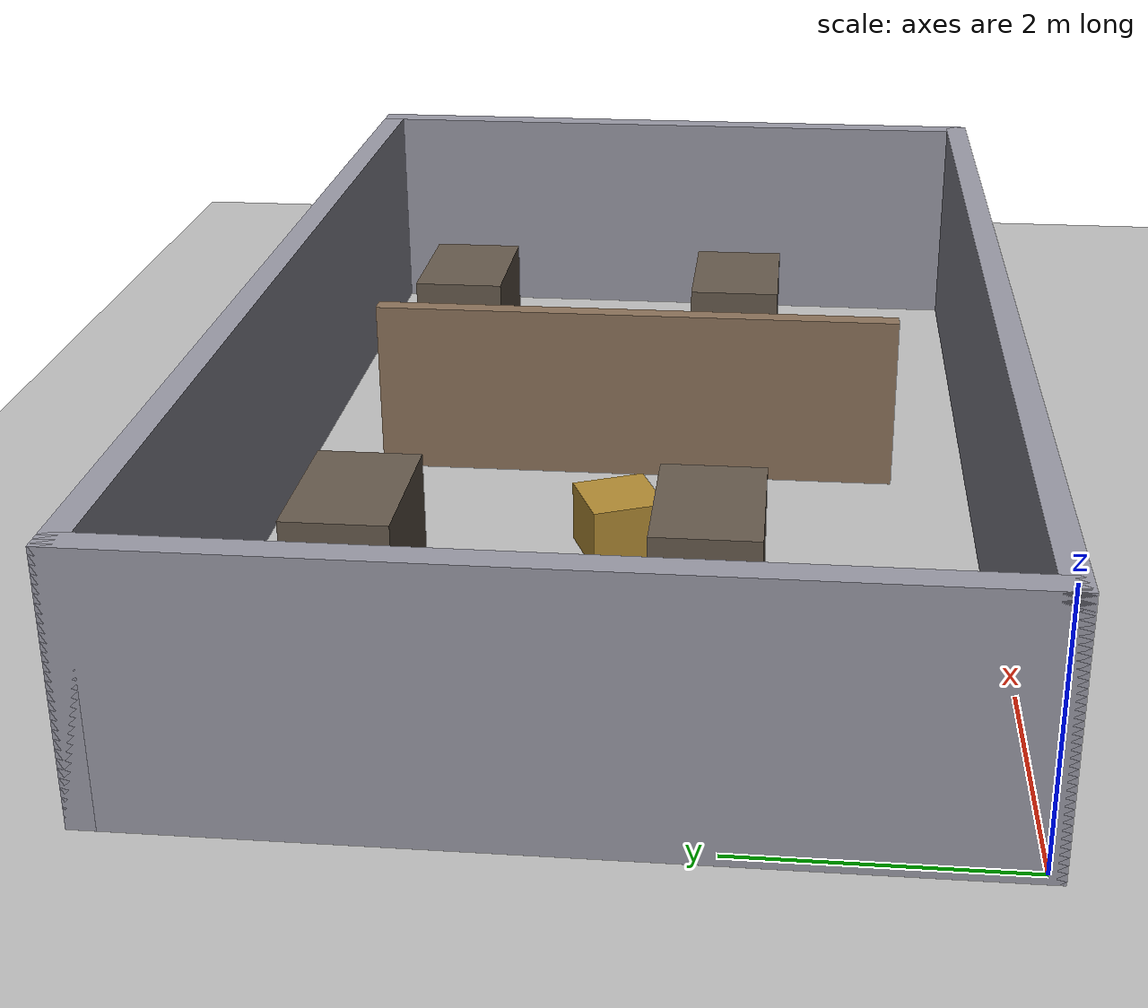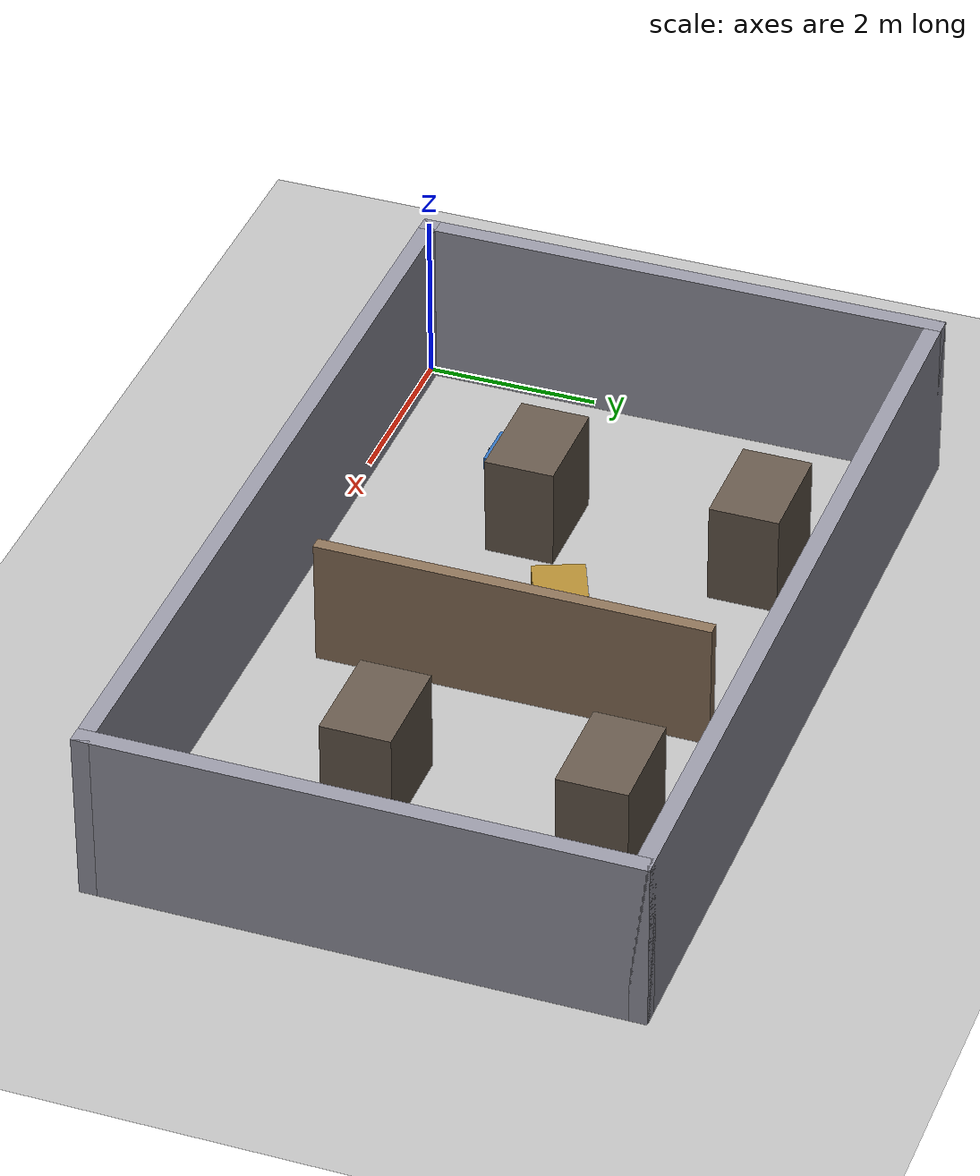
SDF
<?xml version="1.0" ?>
<sdf version="1.8">
  <world name="warehouse">

    <physics name="1ms" type="ignored">
      <max_step_size>0.001</max_step_size>
      <real_time_factor>1.0</real_time_factor>
    </physics>

    <plugin filename="gz-sim-physics-system" name="gz::sim::systems::Physics"/>
    <plugin filename="gz-sim-user-commands-system" name="gz::sim::systems::UserCommands"/>
    <plugin filename="gz-sim-scene-broadcaster-system" name="gz::sim::systems::SceneBroadcaster"/>
    <plugin filename="gz-sim-sensors-system" name="gz::sim::systems::Sensors">
      <render_engine>ogre</render_engine>
    </plugin>

    <light name="sun" type="directional">
      <cast_shadows>true</cast_shadows>
      <pose>0 0 12 0 0 0</pose>
      <diffuse>0.9 0.9 0.9 1</diffuse>
      <specular>0.3 0.3 0.3 1</specular>
      <direction>-0.5 0.2 -0.9</direction>
    </light>

    <model name="ground_plane">
      <static>true</static>
      <link name="link">
        <collision name="collision">
          <geometry>
            <plane>
              <normal>0 0 1</normal>
              <size>30 30</size>
            </plane>
          </geometry>
        </collision>
        <visual name="visual">
          <geometry>
            <plane>
              <normal>0 0 1</normal>
              <size>30 30</size>
            </plane>
          </geometry>
          <material>
            <ambient>0.75 0.75 0.75 1</ambient>
            <diffuse>0.75 0.75 0.75 1</diffuse>
          </material>
        </visual>
      </link>
    </model>

    <!-- Perimeter walls (10 m x 6 m warehouse) -->
    <model name="wall_north">
      <static>true</static>
      <pose>5 6 1 0 0 0</pose>
      <link name="link">
        <collision name="collision"><geometry><box><size>10.2 0.2 2</size></box></geometry></collision>
        <visual name="visual"><geometry><box><size>10.2 0.2 2</size></box></geometry>
          <material><ambient>0.6 0.6 0.65 1</ambient><diffuse>0.6 0.6 0.65 1</diffuse></material>
        </visual>
      </link>
    </model>
    <model name="wall_south">
      <static>true</static>
      <pose>5 0 1 0 0 0</pose>
      <link name="link">
        <collision name="collision"><geometry><box><size>10.2 0.2 2</size></box></geometry></collision>
        <visual name="visual"><geometry><box><size>10.2 0.2 2</size></box></geometry>
          <material><ambient>0.6 0.6 0.65 1</ambient><diffuse>0.6 0.6 0.65 1</diffuse></material>
        </visual>
      </link>
    </model>
    <model name="wall_east">
      <static>true</static>
      <pose>10 3 1 0 0 0</pose>
      <link name="link">
        <collision name="collision"><geometry><box><size>0.2 6.2 2</size></box></geometry></collision>
        <visual name="visual"><geometry><box><size>0.2 6.2 2</size></box></geometry>
          <material><ambient>0.6 0.6 0.65 1</ambient><diffuse>0.6 0.6 0.65 1</diffuse></material>
        </visual>
      </link>
    </model>
    <model name="wall_west">
      <static>true</static>
      <pose>0 3 1 0 0 0</pose>
      <link name="link">
        <collision name="collision"><geometry><box><size>0.2 6.2 2</size></box></geometry></collision>
        <visual name="visual"><geometry><box><size>0.2 6.2 2</size></box></geometry>
          <material><ambient>0.6 0.6 0.65 1</ambient><diffuse>0.6 0.6 0.65 1</diffuse></material>
        </visual>
      </link>
    </model>

    <!-- Central aisle divider -->
    <model name="aisle_divider">
      <static>true</static>
      <pose>5.5 3 0.75 0 0 0</pose>
      <link name="link">
        <collision name="collision"><geometry><box><size>0.15 4.5 1.5</size></box></geometry></collision>
        <visual name="visual"><geometry><box><size>0.15 4.5 1.5</size></box></geometry>
          <material><ambient>0.55 0.45 0.35 1</ambient><diffuse>0.55 0.45 0.35 1</diffuse></material>
        </visual>
      </link>
    </model>

    <!-- Shelf racks -->
    <model name="shelf_row_a1">
      <static>true</static>
      <pose>2.5 2.2 0.6 0 0 0</pose>
      <link name="link">
        <collision name="collision"><geometry><box><size>1.2 0.8 1.2</size></box></geometry></collision>
        <visual name="visual"><geometry><box><size>1.2 0.8 1.2</size></box></geometry>
          <material><ambient>0.4 0.35 0.3 1</ambient><diffuse>0.4 0.35 0.3 1</diffuse></material>
        </visual>
      </link>
    </model>
    <model name="shelf_row_a2">
      <static>true</static>
      <pose>7.5 2.2 0.6 0 0 0</pose>
      <link name="link">
        <collision name="collision"><geometry><box><size>1.2 0.8 1.2</size></box></geometry></collision>
        <visual name="visual"><geometry><box><size>1.2 0.8 1.2</size></box></geometry>
          <material><ambient>0.4 0.35 0.3 1</ambient><diffuse>0.4 0.35 0.3 1</diffuse></material>
        </visual>
      </link>
    </model>
    <model name="shelf_row_b1">
      <static>true</static>
      <pose>2.5 4.8 0.6 0 0 0</pose>
      <link name="link">
        <collision name="collision"><geometry><box><size>1.2 0.8 1.2</size></box></geometry></collision>
        <visual name="visual"><geometry><box><size>1.2 0.8 1.2</size></box></geometry>
          <material><ambient>0.4 0.35 0.3 1</ambient><diffuse>0.4 0.35 0.3 1</diffuse></material>
        </visual>
      </link>
    </model>
    <model name="shelf_row_b2">
      <static>true</static>
      <pose>7.5 4.8 0.6 0 0 0</pose>
      <link name="link">
        <collision name="collision"><geometry><box><size>1.2 0.8 1.2</size></box></geometry></collision>
        <visual name="visual"><geometry><box><size>1.2 0.8 1.2</size></box></geometry>
          <material><ambient>0.4 0.35 0.3 1</ambient><diffuse>0.4 0.35 0.3 1</diffuse></material>
        </visual>
      </link>
    </model>

    <!-- Random pallet obstacle for safety-filter demos -->
    <model name="pallet_obstacle">
      <static>true</static>
      <pose>4.0 3.0 0.25 0 0 0.4</pose>
      <link name="link">
        <collision name="collision"><geometry><box><size>0.6 0.6 0.5</size></box></geometry></collision>
        <visual name="visual"><geometry><box><size>0.6 0.6 0.5</size></box></geometry>
          <material><ambient>0.7 0.55 0.2 1</ambient><diffuse>0.7 0.55 0.2 1</diffuse></material>
        </visual>
      </link>
    </model>

    <!-- Patrol robot - inlined from model.sdf to ensure plugins load correctly -->
    <model name="patrol_robot">
      <pose>1.5 1.5 0.08 0 0 0</pose>

      <link name="base_link">
        <pose>0 0 0.08 0 0 0</pose>
        <inertial>
          <mass>8.0</mass>
          <inertia>
            <ixx>0.08</ixx>
            <ixy>0</ixy>
            <ixz>0</ixz>
            <iyy>0.12</iyy>
            <iyz>0</iyz>
            <izz>0.16</izz>
          </inertia>
        </inertial>
        <visual name="body_visual">
          <geometry>
            <box><size>0.55 0.40 0.16</size></box>
          </geometry>
          <material>
            <ambient>0.2 0.45 0.75 1</ambient>
            <diffuse>0.2 0.45 0.75 1</diffuse>
          </material>
        </visual>
        <collision name="body_collision">
          <geometry>
            <box><size>0.55 0.40 0.16</size></box>
          </geometry>
        </collision>
      </link>

      <link name="left_wheel">
        <pose>0 0.22 0.05 -1.5707 0 0</pose>
        <inertial>
          <mass>0.5</mass>
          <inertia>
            <ixx>0.001</ixx>
            <iyy>0.001</iyy>
            <izz>0.001</izz>
          </inertia>
        </inertial>
        <visual name="left_wheel_visual">
          <geometry>
            <cylinder><radius>0.05</radius><length>0.04</length></cylinder>
          </geometry>
          <material>
            <ambient>0.1 0.1 0.1 1</ambient>
            <diffuse>0.1 0.1 0.1 1</diffuse>
          </material>
        </visual>
        <collision name="left_wheel_collision">
          <geometry>
            <cylinder><radius>0.05</radius><length>0.04</length></cylinder>
          </geometry>
        </collision>
      </link>

      <link name="right_wheel">
        <pose>0 -0.22 0.05 -1.5707 0 0</pose>
        <inertial>
          <mass>0.5</mass>
          <inertia>
            <ixx>0.001</ixx>
            <iyy>0.001</iyy>
            <izz>0.001</izz>
          </inertia>
        </inertial>
        <visual name="right_wheel_visual">
          <geometry>
            <cylinder><radius>0.05</radius><length>0.04</length></cylinder>
          </geometry>
          <material>
            <ambient>0.1 0.1 0.1 1</ambient>
            <diffuse>0.1 0.1 0.1 1</diffuse>
          </material>
        </visual>
        <collision name="right_wheel_collision">
          <geometry>
            <cylinder><radius>0.05</radius><length>0.04</length></cylinder>
          </geometry>
        </collision>
      </link>

      <link name="caster">
        <pose>-0.22 0 0.03 0 0 0</pose>
        <inertial>
          <mass>0.2</mass>
          <inertia>
            <ixx>0.0001</ixx>
            <iyy>0.0001</iyy>
            <izz>0.0001</izz>
          </inertia>
        </inertial>
        <visual name="caster_visual">
          <geometry>
            <sphere><radius>0.03</radius></sphere>
          </geometry>
          <material>
            <ambient>0.3 0.3 0.3 1</ambient>
            <diffuse>0.3 0.3 0.3 1</diffuse>
          </material>
        </visual>
        <collision name="caster_collision">
          <geometry>
            <sphere><radius>0.03</radius></sphere>
          </geometry>
        </collision>
      </link>

      <link name="lidar_link">
        <pose>0.05 0 0.18 0 0 0</pose>
        <inertial>
          <mass>0.1</mass>
          <inertia>
            <ixx>0.0001</ixx>
            <iyy>0.0001</iyy>
            <izz>0.0001</izz>
          </inertia>
        </inertial>
        <visual name="lidar_visual">
          <geometry>
            <cylinder><radius>0.04</radius><length>0.05</length></cylinder>
          </geometry>
          <material>
            <ambient>0.9 0.5 0.1 1</ambient>
            <diffuse>0.9 0.5 0.1 1</diffuse>
          </material>
        </visual>
        <sensor name="lidar" type="lidar">
          <topic>scan</topic>
          <gz_frame_id>lidar_link</gz_frame_id>
          <update_rate>10</update_rate>
          <lidar>
            <scan>
              <horizontal>
                <samples>360</samples>
                <resolution>1</resolution>
                <min_angle>-3.14159</min_angle>
                <max_angle>3.14159</max_angle>
              </horizontal>
              <vertical>
                <samples>1</samples>
                <resolution>1</resolution>
                <min_angle>0</min_angle>
                <max_angle>0</max_angle>
              </vertical>
            </scan>
            <range>
              <min>0.12</min>
              <max>8.0</max>
              <resolution>0.01</resolution>
            </range>
          </lidar>
          <visualize>false</visualize>
        </sensor>
      </link>

      <joint name="left_wheel_joint" type="revolute">
        <parent>base_link</parent>
        <child>left_wheel</child>
        <axis>
          <xyz>0 0 1</xyz>
          <limit>
            <lower>-1e308</lower>
            <upper>1e308</upper>
          </limit>
        </axis>
      </joint>

      <joint name="right_wheel_joint" type="revolute">
        <parent>base_link</parent>
        <child>right_wheel</child>
        <axis>
          <xyz>0 0 1</xyz>
          <limit>
            <lower>-1e308</lower>
            <upper>1e308</upper>
          </limit>
        </axis>
      </joint>

      <joint name="caster_joint" type="ball">
        <parent>base_link</parent>
        <child>caster</child>
      </joint>

      <joint name="lidar_joint" type="fixed">
        <parent>base_link</parent>
        <child>lidar_link</child>
      </joint>

      <plugin filename="gz-sim-diff-drive-system" name="gz::sim::systems::DiffDrive">
        <left_joint>left_wheel_joint</left_joint>
        <right_joint>right_wheel_joint</right_joint>
        <wheel_separation>0.44</wheel_separation>
        <wheel_radius>0.05</wheel_radius>
        <topic>cmd_vel</topic>
        <odom_topic>odometry</odom_topic>
        <frame_id>odom</frame_id>
        <child_frame_id>base_link</child_frame_id>
        <odom_publish_frequency>30</odom_publish_frequency>
        <max_linear_velocity>0.6</max_linear_velocity>
        <min_linear_velocity>-0.3</min_linear_velocity>
        <max_angular_velocity>1.2</max_angular_velocity>
        <min_angular_velocity>-1.2</min_angular_velocity>
      </plugin>

    </model>

  </world>
</sdf>
